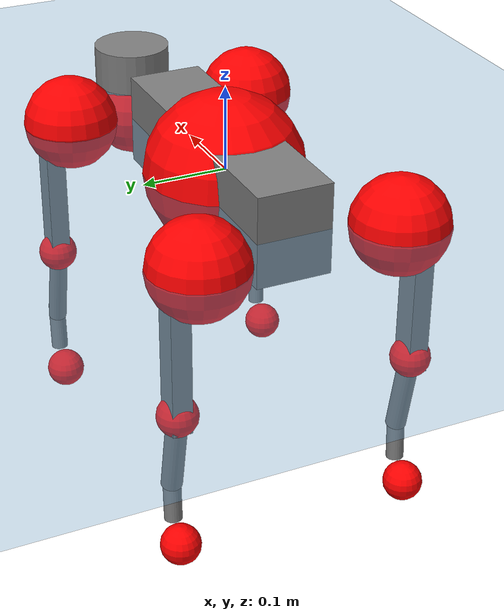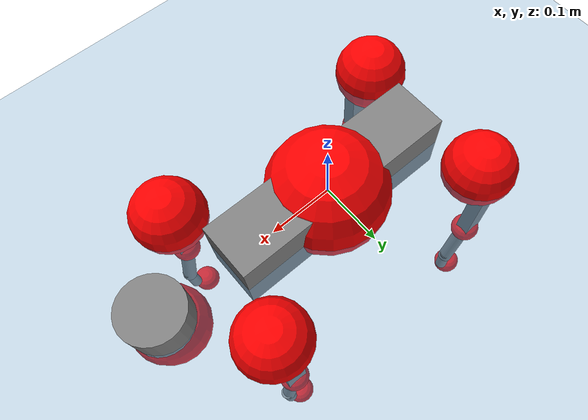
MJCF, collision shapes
<mujoco model="go2">
  <compiler angle="radian" assetdir="assets" balanceinertia="true" inertiafromgeom="false"/>

  <option timestep="0.005" density="1.2" viscosity="2e-05"/>

  <size nkey="1"/>

  <visual>
    <quality shadowsize="8192"/>
    <map shadowclip="0.5"/>
  </visual>

  <default>
    <default class="/">
      <geom contype="0" conaffinity="0" group="1" solref="-1000 -80"/>
      <site size="0.01 0.005 0.005" group="5"/>
      <general forcelimited="true" biastype="affine" gainprm="20" biasprm="0 -20 -0.5"/>
      <default class="go2">
        <joint armature="0.01" damping="0.01" frictionloss="0.2"/>
        <geom condim="1" margin="0.001"/>
        <default class="visual">
          <geom type="mesh" group="2"/>
        </default>
        <default class="collision">
          <geom group="3"/>
          <default class="foot">
            <geom size="0.022 0 0" condim="6" priority="1" friction="0.8 0.02 0.01" solimp="0.015 1 0.022"/>
          </default>
        </default>
        <default class="reward_collision_sphere">
          <geom group="5" rgba="1 0 0 1"/>
        </default>
      </default>
    </default>
  </default>

  <asset>
    <texture type="skybox" colorspace="auto" name="//unnamed_texture_0" builtin="gradient" rgb1="0.95 0.95 0.95" rgb2="0.95 0.95 0.95" width="100" height="600"/>
    <texture type="2d" colorspace="auto" name="texplane" builtin="checker" rgb1="0.345 0.575 0.748" rgb2="0.345 0.575 0.748" markrgb="1 1 1" width="512" height="512"/>
    <material name="MatPlane" class="/" texture="texplane" texuniform="true" texrepeat="2 2" specular="0.9"/>
    <material name="metal" class="/" rgba="0.9 0.95 0.95 1"/>
    <material name="black" class="/" rgba="0 0 0 1"/>
    <material name="white" class="/"/>
    <material name="gray" class="/" rgba="0.671705 0.692426 0.77427 1"/>
    <mesh name="base_0" class="/" file="base_0.obj"/>
    <mesh name="base_1" class="/" file="base_1.obj"/>
    <mesh name="base_2" class="/" file="base_2.obj"/>
    <mesh name="base_3" class="/" file="base_3.obj"/>
    <mesh name="base_4" class="/" file="base_4.obj"/>
    <mesh name="hip_0" class="/" file="hip_0.obj"/>
    <mesh name="hip_1" class="/" file="hip_1.obj"/>
    <mesh name="thigh_0" class="/" file="thigh_0.obj"/>
    <mesh name="thigh_1" class="/" file="thigh_1.obj"/>
    <mesh name="thigh_mirror_0" class="/" file="thigh_mirror_0.obj"/>
    <mesh name="thigh_mirror_1" class="/" file="thigh_mirror_1.obj"/>
    <mesh name="calf_0" class="/" file="calf_0.obj"/>
    <mesh name="calf_1" class="/" file="calf_1.obj"/>
    <mesh name="calf_mirror_0" class="/" file="calf_mirror_0.obj"/>
    <mesh name="calf_mirror_1" class="/" file="calf_mirror_1.obj"/>
    <mesh name="foot" class="/" file="foot.obj"/>
  </asset>

  <worldbody>
    <geom name="floor" class="/" size="100 100 0.125" type="plane" group="0" material="MatPlane"/>
    <light name="toplight_shadow" class="/" pos="0 0 5" dir="0.0990148 0.0990148 -0.990148" type="directional" ambient="0.04 0.04 0.04" diffuse="0.55 0.55 0.55" specular="0.12 0.12 0.12"/>
    <light name="toplight_fill" class="/" pos="0 0 5" dir="0.0990148 0.0990148 -0.990148" type="directional" castshadow="false" ambient="0.04 0.04 0.04" diffuse="0.3 0.3 0.3" specular="0.08 0.08 0.08"/>
    <body name="trunk" childclass="go2" pos="0.00038736 -3.0572e-05 -0.000890249" quat="1 5.45949e-05 0.000482211 0.000101405">
      <inertial pos="0.0190104 -0.00111608 -0.00341531" quat="-0.000878209 0.713531 -0.00147397 0.700622" mass="5.89169" diaginertia="0.112612 0.0994964 0.00857713"/>
      <joint name="//unnamed_joint_0" type="free" armature="0" damping="0" frictionloss="0"/>
      <geom name="//unnamed_geom_1" class="visual" material="black" mesh="base_0"/>
      <geom name="//unnamed_geom_2" class="visual" material="black" mesh="base_1"/>
      <geom name="//unnamed_geom_3" class="visual" material="black" mesh="base_2"/>
      <geom name="//unnamed_geom_4" class="visual" material="white" mesh="base_3"/>
      <geom name="//unnamed_geom_5" class="visual" material="gray" mesh="base_4"/>
      <geom name="trunk_1" class="collision" size="0.176911 0.0439691 0.0536094" type="box"/>
      <geom name="trunk_2" class="collision" size="0.0470258 0.0423232" pos="0.287684 0 0.00810306" type="cylinder"/>
      <geom name="trunk_3" class="collision" size="0.0442042" pos="0.29576 0 -0.0486183"/>
      <geom name="//unnamed_geom_9" class="reward_collision_sphere" size="0.0940515"/>
      <geom name="//unnamed_geom_10" class="reward_collision_sphere" size="0.0564309" pos="0.282637 0 -0.0364638"/>
      <site name="imu" pos="-0.0180732 0.000192961 0.0266574" size="0.00940515"/>
      <camera name="track" pos="0 -2.00364 0" quat="0.707107 0.707107 0 0" mode="trackcom"/>
      <camera name="ego_camera" pos="0.314939 0 0.0364638" quat="-0.5 -0.5 0.5 0.5"/>
      <body name="FL_hip" pos="0.194177 0.0462564 0.00187955" quat="1 -7.06933e-05 0.000163483 -0.000161268">
        <inertial pos="-0.00529866 0.00204518 -0.000225507" quat="0.497056 0.499152 0.505325 0.498427" mass="0.543159" diaginertia="0.000899927 0.000580554 0.000162909"/>
        <joint name="FL_hip_joint" pos="0 0 0" axis="1 0.000537999 0.000643314" range="-1.0468 1.02961" armature="0.00930363" damping="0.00191212" frictionloss="0.190228"/>
        <geom name="//unnamed_geom_11" class="visual" material="metal" mesh="hip_0"/>
        <geom name="//unnamed_geom_12" class="visual" material="gray" mesh="hip_1"/>
        <geom name="//unnamed_geom_13" class="collision" size="0.0432637 0.0188103" pos="0 0.0801456 0" quat="0.707107 0.707107 0 0" type="cylinder"/>
        <geom name="//unnamed_geom_14" class="reward_collision_sphere" size="0.0564309" pos="0 0.0701274 0"/>
        <body name="FL_thigh" pos="-8.34275e-05 0.0969695 0.00136092" quat="1 -0.000166002 0.000623445 -0.000183449">
          <inertial pos="-0.00405374 -0.0222548 -0.0271159" quat="0.830605 0.0850198 -0.0210846 0.54993" mass="0.953737" diaginertia="0.00620814 0.0057217 0.000302824"/>
          <joint name="FL_thigh_joint" pos="0 0 0" axis="-0.00562507 0.999953 -0.00787188" stiffness="0.00206904" range="-1.54438 3.48794" armature="0.00956117" damping="0.00829619" frictionloss="0.194487"/>
          <geom name="//unnamed_geom_15" class="visual" material="metal" mesh="thigh_0"/>
          <geom name="//unnamed_geom_16" class="visual" material="gray" mesh="thigh_1"/>
          <geom name="//unnamed_geom_17" class="collision" size="0.100165 0.0115213 0.0159888" pos="0 0 -0.0862976" quat="0.707107 0 0.707107 0" type="box"/>
          <body name="FL_calf" pos="-0.000939488 0.000123 -0.172877" quat="1 1.29163e-05 2.20688e-05 9.3962e-06">
            <inertial pos="0.00645338 -0.000578674 -0.113154" quat="0.710361 0.00192247 -0.00577637 0.703811" mass="0.200538" diaginertia="0.00153992 0.0014802 1.85016e-05"/>
            <joint name="FL_calf_joint" pos="0 0 0" axis="0.00512779 0.999987 -0.000566124" range="-2.73099 -0.838475" armature="0.00903014" damping="0.000636321" frictionloss="0.186534"/>
            <geom name="//unnamed_geom_18" class="visual" material="gray" mesh="calf_0"/>
            <geom name="//unnamed_geom_19" class="visual" material="black" mesh="calf_1"/>
            <geom name="FL_calf0" class="collision" size="0.0112862 0.0564309" pos="0.00807535 0 -0.0486183" quat="0.994493 0 -0.104807 0" type="cylinder"/>
            <geom name="//unnamed_geom_21" class="collision" size="0.0103457 0.0305667" pos="0.0201884 0 -0.119925" quat="0.999688 0 0.0249974 0" type="cylinder"/>
            <geom name="//unnamed_geom_22" class="visual" pos="0 0 -0.172595" quat="1 0 0 0" material="black" mesh="foot"/>
            <geom name="FL_foot" class="foot" size="0.0180706" pos="-0.00201884 0 -0.172595"/>
            <geom name="//unnamed_geom_24" class="reward_collision_sphere" size="0.0235129"/>
            <geom name="//unnamed_geom_25" class="reward_collision_sphere" size="0.0235129" pos="-0.00201884 0 -0.172595"/>
            <site name="FL_foot" class="foot" pos="-0.00201884 0 -0.172595" size="0.00940515"/>
          </body>
        </body>
      </body>
      <body name="FR_hip" pos="0.194313 -0.047503 0.000971839" quat="1 -2.28803e-06 -1.44554e-05 -4.51866e-06">
        <inertial pos="-0.00477722 -0.00397499 -0.0001027" quat="0.490438 0.51078 0.500094 0.498478" mass="0.56453" diaginertia="0.000924074 0.000615442 0.00016782"/>
        <joint name="FR_hip_joint" pos="0 0 0" axis="0.999977 0.00130383 -0.00672643" range="-1.04411 1.04724" armature="0.00958553" damping="0.00678306" frictionloss="0.179249"/>
        <geom name="//unnamed_geom_26" class="visual" pos="0 1.6684e-09 7.15609e-08" quat="4.63268e-05 1 0 0" material="metal" mesh="hip_0"/>
        <geom name="//unnamed_geom_27" class="visual" pos="0 2.70467e-09 -1.76997e-07" quat="4.63268e-05 1 0 0" material="gray" mesh="hip_1"/>
        <geom name="//unnamed_geom_28" class="collision" size="0.0432637 0.0188103" pos="0 -0.0801456 0" quat="0.707107 0.707107 0 0" type="cylinder"/>
        <geom name="//unnamed_geom_29" class="reward_collision_sphere" size="0.0564309" pos="0 -0.0701274 0"/>
        <body name="FR_thigh" pos="-0.000298565 -0.0957251 -0.000892508" quat="1 0.000407878 -0.000352468 0.000107443">
          <inertial pos="-0.00198195 0.023172 -0.0257311" quat="0.551507 -0.0170855 0.0845843 0.829695" mass="0.962165" diaginertia="0.0062519 0.00582066 0.00031228"/>
          <joint name="FR_thigh_joint" pos="0 0 0" axis="-0.000512544 -0.999996 -0.00295196" range="-3.50877 1.57082" armature="0.00954532" damping="0.011293" frictionloss="0.178775"/>
          <geom name="//unnamed_geom_30" class="visual" material="metal" mesh="thigh_mirror_0"/>
          <geom name="//unnamed_geom_31" class="visual" material="gray" mesh="thigh_mirror_1"/>
          <geom name="//unnamed_geom_32" class="collision" size="0.100165 0.0115213 0.0159888" pos="0 0 -0.0862976" quat="0.707107 0 0.707107 0" type="box"/>
          <body name="FR_calf" pos="0.000570389 -0.00087828 -0.171762" quat="1 -0.000229157 5.71529e-06 0.00019418">
            <inertial pos="0.00600908 0.000650346 -0.114857" quat="0.706038 -0.000855937 0.00933195 0.708112" mass="0.200463" diaginertia="0.00155154 0.00150423 1.87296e-05"/>
            <joint name="FR_calf_joint" pos="0 0 0" axis="0.00270755 -0.999995 -0.00154669" range="0.80393 2.73488" armature="0.00971712" damping="0.0162502" frictionloss="0.178856"/>
            <geom name="//unnamed_geom_33" class="visual" material="gray" mesh="calf_mirror_0"/>
            <geom name="//unnamed_geom_34" class="visual" material="black" mesh="calf_mirror_1"/>
            <geom name="FR_calf0" class="collision" size="0.0122267 0.0564309" pos="0.0100942 0 -0.0486183" quat="0.995004 0 -0.0998334 0" type="cylinder"/>
            <geom name="//unnamed_geom_36" class="collision" size="0.0103457 0.0305667" pos="0.0201884 0 -0.119925" quat="0.999688 0 0.0249974 0" type="cylinder"/>
            <geom name="//unnamed_geom_37" class="visual" pos="0 0 -0.172595" quat="1 0 0 0" material="black" mesh="foot"/>
            <geom name="FR_foot" class="foot" size="0.0217856" pos="-0.00201884 0 -0.172595"/>
            <geom name="//unnamed_geom_39" class="reward_collision_sphere" size="0.0235129"/>
            <geom name="//unnamed_geom_40" class="reward_collision_sphere" size="0.0235129" pos="-0.00201884 0 -0.172595"/>
            <site name="FR_foot" class="foot" pos="-0.00201884 0 -0.172595" size="0.00940515"/>
          </body>
        </body>
      </body>
      <body name="RL_hip" pos="-0.194034 0.0472295 -0.00217011" quat="1 -0.000156834 -9.03927e-05 -0.000165691">
        <inertial pos="0.00559036 0.00209524 -0.00194224" quat="0.503196 0.499163 0.496807 0.500812" mass="0.576603" diaginertia="0.000971721 0.000614666 0.000172898"/>
        <joint name="RL_hip_joint" pos="0 0 0" axis="-0.999798 -0.0124803 0.0157428" stiffness="0.00434334" range="-1.04461 1.03091" armature="0.0092084" damping="0.00027873" frictionloss="0.188852"/>
        <geom name="//unnamed_geom_41" class="visual" pos="-1.73459e-09 0 -3.4002e-07" quat="4.63268e-05 0 1 0" material="metal" mesh="hip_0"/>
        <geom name="//unnamed_geom_42" class="visual" pos="-2.81198e-09 0 -3.01549e-07" quat="4.63268e-05 0 1 0" material="gray" mesh="hip_1"/>
        <geom name="//unnamed_geom_43" class="collision" size="0.0432637 0.0188103" pos="0 0.0801456 0" quat="0.707107 0.707107 0 0" type="cylinder"/>
        <geom name="//unnamed_geom_44" class="reward_collision_sphere" size="0.0564309" pos="0 0.0701274 0"/>
        <body name="RL_thigh" pos="-0.000265754 0.0967032 -0.000912321" quat="1 -0.000457427 0.000165096 -0.000215926">
          <inertial pos="-0.00577472 -0.0231123 -0.0283491" quat="0.829549 0.0847631 -0.01994 0.551603" mass="0.970465" diaginertia="0.00608099 0.00589341 0.000303378"/>
          <joint name="RL_thigh_joint" pos="0 0 0" axis="-0.00264144 0.999993 0.002612" stiffness="0.0103718" range="-0.505063 4.54207" armature="0.00944722" damping="0.00374273" frictionloss="0.189485"/>
          <geom name="//unnamed_geom_45" class="visual" material="metal" mesh="thigh_0"/>
          <geom name="//unnamed_geom_46" class="visual" material="gray" mesh="thigh_1"/>
          <geom name="//unnamed_geom_47" class="collision" size="0.100165 0.0115213 0.0159888" pos="0 0 -0.0862976" quat="0.707107 0 0.707107 0" type="box"/>
          <body name="RL_calf" pos="0.00122586 -0.0010068 -0.171869" quat="1 4.32055e-06 -5.76794e-07 9.89628e-07">
            <inertial pos="0.00547493 0.000806329 -0.113608" quat="0.709397 0.00167533 -0.00562551 0.704785" mass="0.206397" diaginertia="0.00160705 0.00153672 1.88934e-05"/>
            <joint name="RL_calf_joint" pos="0 0 0" axis="0.0108045 0.999941 0.00132853" range="-2.70103 -0.837584" armature="0.0101214" damping="0.00765351" frictionloss="0.180911"/>
            <geom name="//unnamed_geom_48" class="visual" material="gray" mesh="calf_0"/>
            <geom name="//unnamed_geom_49" class="visual" material="black" mesh="calf_1"/>
            <geom name="RL_calf0" class="collision" size="0.0122267 0.0564309" pos="0.0100942 0 -0.0486183" quat="0.995004 0 -0.0998334 0" type="cylinder"/>
            <geom name="//unnamed_geom_51" class="collision" size="0.0103457 0.0305667" pos="0.0201884 0 -0.119925" quat="0.999688 0 0.0249974 0" type="cylinder"/>
            <geom name="//unnamed_geom_52" class="visual" pos="0 0 -0.172595" quat="1 0 0 0" material="black" mesh="foot"/>
            <geom name="RL_foot" class="foot" size="0.0180586" pos="-0.00201884 0 -0.172595"/>
            <geom name="//unnamed_geom_54" class="reward_collision_sphere" size="0.0235129"/>
            <geom name="//unnamed_geom_55" class="reward_collision_sphere" size="0.0235129" pos="-0.00201884 0 -0.172595"/>
            <site name="RL_foot" class="foot" pos="-0.00201884 0 -0.172595" size="0.00940515"/>
          </body>
        </body>
      </body>
      <body name="RR_hip" pos="-0.193142 -0.0465205 -0.00271629" quat="1 -7.6715e-05 -5.84865e-05 2.66922e-05">
        <inertial pos="0.00590484 -0.00271286 -0.00177462" quat="0.508569 0.49523 0.49388 0.502182" mass="0.555093" diaginertia="0.000901477 0.000584873 0.000163691"/>
        <joint name="RR_hip_joint" pos="0 0 0" axis="-0.999967 -0.00753144 -0.00296043" range="-1.07065 1.029" armature="0.00985076" damping="0.00826038" frictionloss="0.18826"/>
        <geom name="//unnamed_geom_56" class="visual" pos="1.73433e-09 1.6684e-09 -4.11581e-07" quat="2.14617e-09 4.63268e-05 4.63268e-05 -1" material="metal" mesh="hip_0"/>
        <geom name="//unnamed_geom_57" class="visual" pos="2.81263e-09 2.70467e-09 -1.24552e-07" quat="2.14617e-09 4.63268e-05 4.63268e-05 -1" material="gray" mesh="hip_1"/>
        <geom name="//unnamed_geom_58" class="collision" size="0.0432637 0.0188103" pos="0 -0.0801456 0" quat="0.707107 0.707107 0 0" type="cylinder"/>
        <geom name="//unnamed_geom_59" class="reward_collision_sphere" size="0.0564309" pos="0 -0.0701274 0"/>
        <body name="RR_thigh" pos="0.00193866 -0.0964036 -0.00177955" quat="1 -2.50117e-05 0.000435816 -0.000142611">
          <inertial pos="-0.00381054 0.0217796 -0.026874" quat="0.551829 -0.019745 0.0847183 0.829408" mass="0.95996" diaginertia="0.00624164 0.00589808 0.000306549"/>
          <joint name="RR_thigh_joint" pos="0 0 0" axis="0.000650415 -0.999973 -0.00728898" range="-4.55076 0.538352" armature="0.0092715" damping="0.00998803" frictionloss="0.185967"/>
          <geom name="//unnamed_geom_60" class="visual" material="metal" mesh="thigh_mirror_0"/>
          <geom name="//unnamed_geom_61" class="visual" material="gray" mesh="thigh_mirror_1"/>
          <geom name="//unnamed_geom_62" class="collision" size="0.100165 0.0115213 0.0159888" pos="0 0 -0.0862976" quat="0.707107 0 0.707107 0" type="box"/>
          <body name="RR_calf" pos="-0.00045635 0.00113135 -0.172666" quat="1 -0.000359019 0.000534121 -0.000332707">
            <inertial pos="0.00680326 0.00162298 -0.115167" quat="0.704302 -0.00322463 0.000566759 0.709893" mass="0.203567" diaginertia="0.00158617 0.0014773 1.87637e-05"/>
            <joint name="RR_calf_joint" pos="0 0 0" axis="0.00250834 -0.999994 0.00256184" stiffness="0.000555552" range="0.841944 2.75397" armature="0.00944604" damping="0.0145858" frictionloss="0.178698"/>
            <geom name="//unnamed_geom_63" class="visual" material="gray" mesh="calf_mirror_0"/>
            <geom name="//unnamed_geom_64" class="visual" material="black" mesh="calf_mirror_1"/>
            <geom name="RR_calf0" class="collision" size="0.0122267 0.0564309" pos="0.0100942 0 -0.0486183" quat="0.995004 0 -0.0998334 0" type="cylinder"/>
            <geom name="//unnamed_geom_66" class="collision" size="0.0103457 0.0305667" pos="0.0201884 0 -0.119925" quat="0.999688 0 0.0249974 0" type="cylinder"/>
            <geom name="//unnamed_geom_67" class="visual" pos="0 0 -0.172595" quat="1 0 0 0" material="black" mesh="foot"/>
            <geom name="RR_foot" class="foot" size="0.0220781" pos="-0.00201884 0 -0.172595"/>
            <geom name="//unnamed_geom_69" class="reward_collision_sphere" size="0.0235129"/>
            <geom name="//unnamed_geom_70" class="reward_collision_sphere" size="0.0235129" pos="-0.00201884 0 -0.172595"/>
            <site name="RR_foot" class="foot" pos="-0.00201884 0 -0.172595" size="0.00940515"/>
          </body>
        </body>
      </body>
    </body>
  </worldbody>

  <contact>
    <pair class="/" geom1="floor" geom2="FL_foot" name="//unnamed_contact_0"/>
    <pair class="/" geom1="floor" geom2="FR_foot" name="//unnamed_contact_1"/>
    <pair class="/" geom1="floor" geom2="RL_foot" name="//unnamed_contact_2"/>
    <pair class="/" geom1="floor" geom2="RR_foot" name="//unnamed_contact_3"/>
  </contact>

  <actuator>
    <general name="FL_hip" class="/" joint="FL_hip_joint" forcerange="-21.8365 21.8365" gainprm="19.2394" biasprm="0 -19.2394 -0.479221"/>
    <general name="FL_thigh" class="/" joint="FL_thigh_joint" forcerange="-20.8831 20.8831" gainprm="19.2394" biasprm="0 -19.2394 -0.479221"/>
    <general name="FL_calf" class="/" joint="FL_calf_joint" forcerange="-43.9758 43.9758" gainprm="19.2394" biasprm="0 -19.2394 -0.479221"/>
    <general name="FR_hip" class="/" joint="FR_hip_joint" forcerange="-21.9713 21.9713" gainprm="19.2394" biasprm="0 -19.2394 -0.479221"/>
    <general name="FR_thigh" class="/" joint="FR_thigh_joint" forcerange="-22.2451 22.2451" gainprm="19.2394" biasprm="0 -19.2394 -0.479221"/>
    <general name="FR_calf" class="/" joint="FR_calf_joint" forcerange="-42.3217 42.3217" gainprm="19.2394" biasprm="0 -19.2394 -0.479221"/>
    <general name="RL_hip" class="/" joint="RL_hip_joint" forcerange="-22.0901 22.0901" gainprm="19.2394" biasprm="0 -19.2394 -0.479221"/>
    <general name="RL_thigh" class="/" joint="RL_thigh_joint" forcerange="-22.227 22.227" gainprm="19.2394" biasprm="0 -19.2394 -0.479221"/>
    <general name="RL_calf" class="/" joint="RL_calf_joint" forcerange="-41.1733 41.1733" gainprm="19.2394" biasprm="0 -19.2394 -0.479221"/>
    <general name="RR_hip" class="/" joint="RR_hip_joint" forcerange="-21.8931 21.8931" gainprm="19.2394" biasprm="0 -19.2394 -0.479221"/>
    <general name="RR_thigh" class="/" joint="RR_thigh_joint" forcerange="-23.1427 23.1427" gainprm="19.2394" biasprm="0 -19.2394 -0.479221"/>
    <general name="RR_calf" class="/" joint="RR_calf_joint" forcerange="-42.1244 42.1244" gainprm="19.2394" biasprm="0 -19.2394 -0.479221"/>
  </actuator>

  <sensor>
    <gyro site="imu" name="imu_angular_velocity"/>
    <velocimeter site="imu" name="imu_linear_velocity"/>
    <framelinvel objtype="site" objname="FL_foot" name="FL_foot_global_linear_velocity"/>
    <framelinvel objtype="site" objname="FR_foot" name="FR_foot_global_linear_velocity"/>
    <framelinvel objtype="site" objname="RL_foot" name="RL_foot_global_linear_velocity"/>
    <framelinvel objtype="site" objname="RR_foot" name="RR_foot_global_linear_velocity"/>
  </sensor>

  <keyframe>
    <key name="home" qpos="0 0 0.325 1 0 0 0 0.1 0.8 -1.5 -0.1 -0.8 1.5 -0.1 0.8 -1.5 0.1 -0.8 1.5"/>
  </keyframe>
</mujoco>
